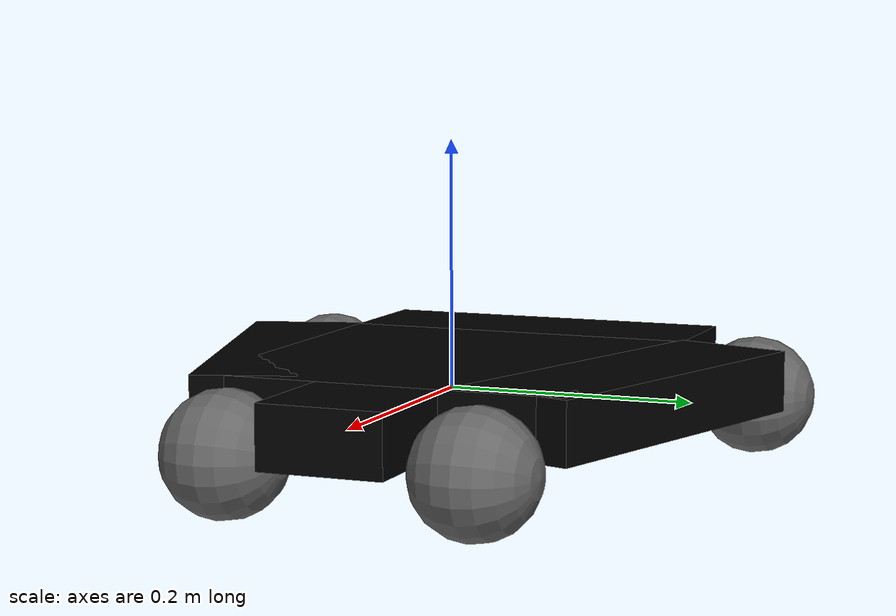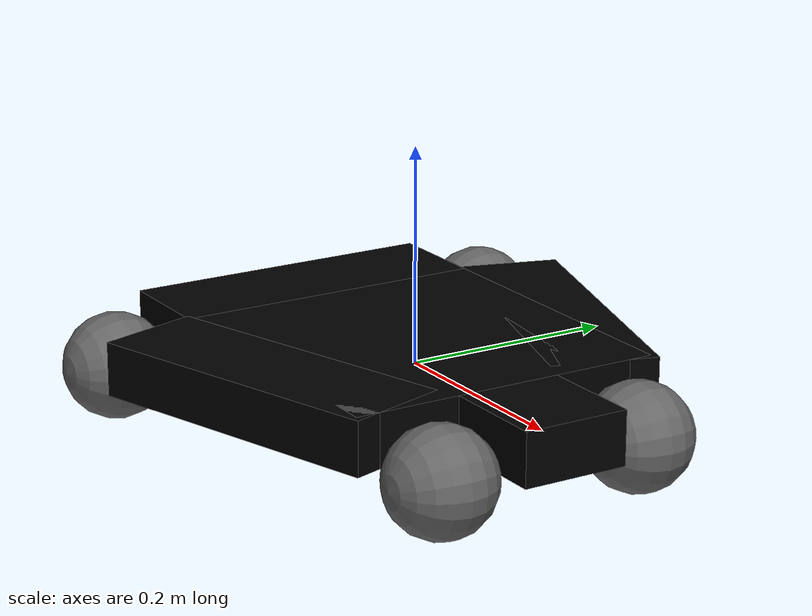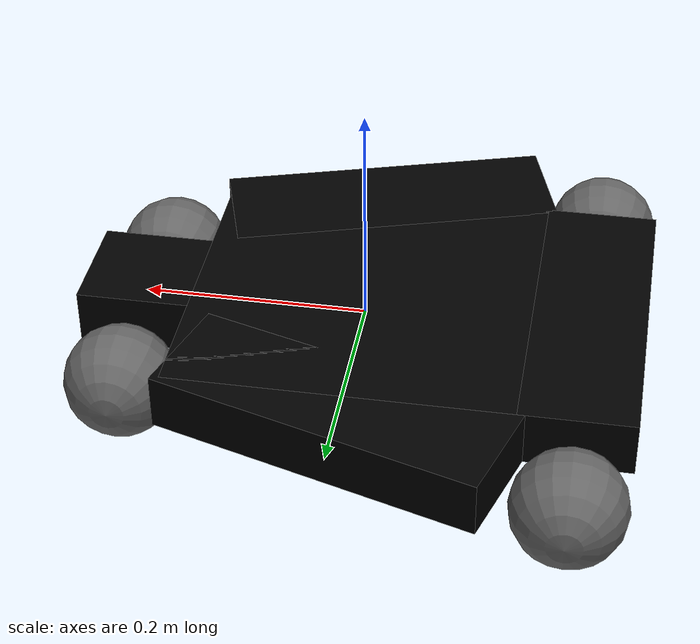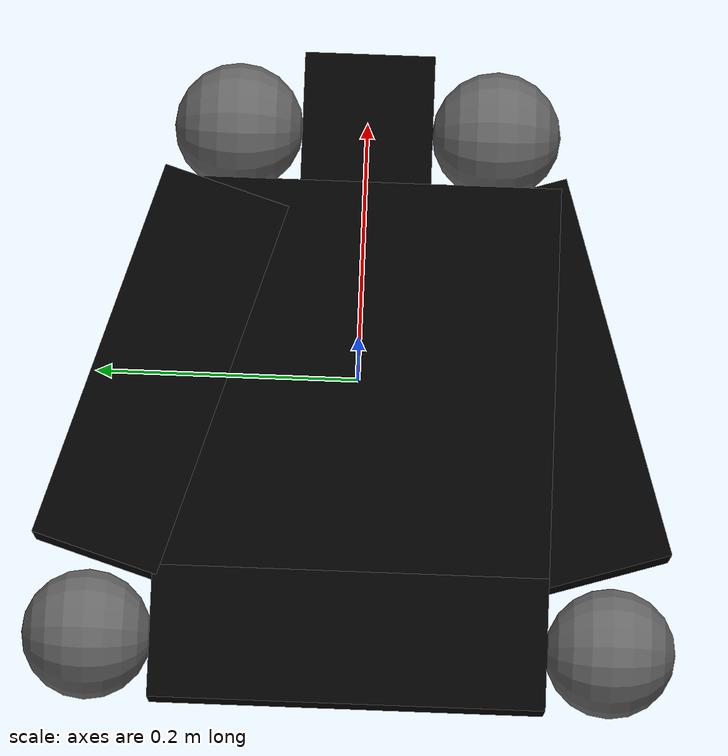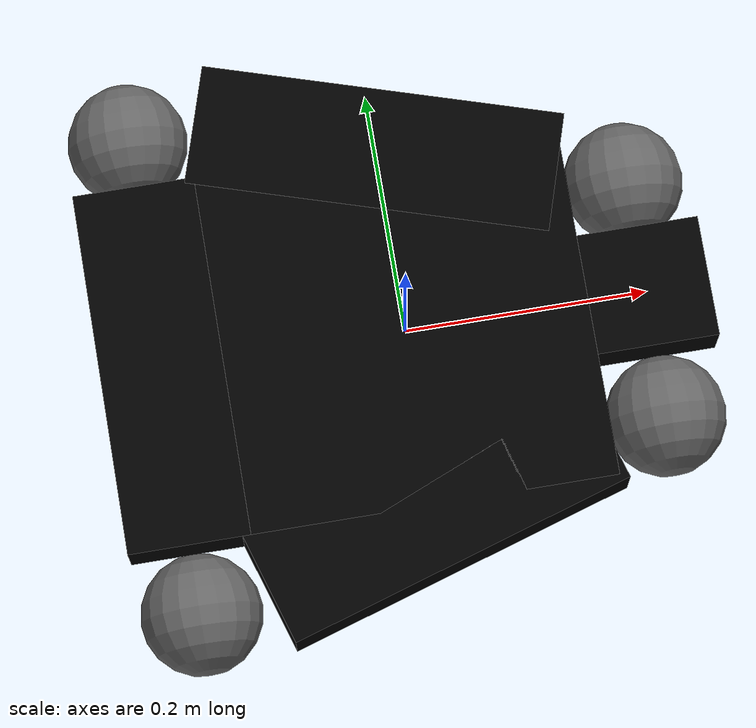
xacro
<?xml version="1.0"?>
<robot xmlns:xacro="http://www.ros.org/wiki/xacro" name="my_simple_mobile_base">

    <xacro:property name="base_mass" value="30.0" />
    <xacro:property name="wheel_mass" value="5.0" />
    <xacro:property name="wheel_radius" value="0.05" />

    <xacro:macro name="cuboid_inertia" params="mass length breadth height">
        <inertial>
            <mass value="${mass}" />
            <inertia ixx="${(mass/12)*(breadth*breadth + height*height)}"
                     iyy="${(mass/12)*(height*height + length*length)}"
                     iyz="0.0" ixy="0.0" ixz="0.0"
                     izz="${(mass/12)*(breadth*breadth + length*length)}" />
        </inertial>
    </xacro:macro>

    <xacro:macro name="sphere_inertia" params="mass radius">
        <inertial>
            <mass value="${mass}" />
            <inertia ixx="${(mass*0.4)*(radius*radius)}"
                     iyy="${(mass*0.4)*(radius*radius)}"
                     iyz="0.0" ixy="0.0" ixz="0.0"
                     izz="${(mass*0.4)*(radius*radius)}" />
        </inertial>
    </xacro:macro>

    <xacro:macro name="wheel" params="name parent *origin mass radius">
        <joint name="joint_${name}" type="fixed">
            <xacro:insert_block name="origin" />
            <parent link="${parent}"/>
            <child link="${name}_link"/>
        </joint>
        <link name="${name}_link">
            <visual>
                <geometry>
                    <sphere radius="${radius}"/>
                </geometry>
                <origin xyz='0.0 0.0 0.0' rpy='1.57 0.0 0.0' />
                <material name="light_grey"/>
            </visual>
            <collision>
                <geometry>
                    <sphere radius="${radius}"/>
                </geometry>
                <origin xyz='0.0 0.0 0.0' rpy='0.0 0.0 0.0' />
            </collision>
            <xacro:sphere_inertia mass="${mass}" radius="${radius}" />
        </link>
        <gazebo reference="${name}_link">
            <material>Gazebo/Grey</material>
        </gazebo>
    </xacro:macro>

    <material name="black">
        <color rgba="0.0 0.0 0.0 1.0"/>
    </material>
    <material name="light_grey">
        <color rgba="0.4 0.4 0.4 1.0"/>
    </material>

    <link name="base_link">
        <visual>
            <geometry>
                <box size='0.1 0.3 0.05'/>
            </geometry>
            <origin xyz='-0.2 0.0 0.0' rpy='0.0 0.0 0.0' />
            <material name="black"/>
        </visual>
        <visual>
            <geometry>
                <box size='0.3 0.3 0.05'/>
            </geometry>
            <origin xyz='0.0 0.0 0.0' rpy='0.0 0.0 0.0' />
            <material name="black"/>
        </visual>
        <visual>
            <geometry>
                <box size='0.1 0.1 0.05'/>
            </geometry>
            <origin xyz='0.2 0.0 0.0' rpy='0.0 0.0 0.0' />
            <material name="black"/>
        </visual>
        <visual>
            <geometry>
                <box size='0.3 0.1 0.05'/>
            </geometry>
            <origin xyz='0.0 0.15 0.0' rpy='0.0 0.0 -0.3' />
            <material name="black"/>
        </visual>
        <visual>
            <geometry>
                <box size='0.3 0.1 0.05'/>
            </geometry>
            <origin xyz='0.0 -0.15 0.0' rpy='0.0 0.0 0.3' />
            <material name="black"/>
        </visual>
        <collision>
            <geometry>
                <box size='0.5 0.3 0.05'/>
            </geometry>
            <origin xyz='0.0 0.0 0.0' rpy='0.0 0.0 0.0' />
        </collision>
        <xacro:cuboid_inertia mass="${base_mass}" length="0.5" breadth="0.3" height="0.05"/>
    </link>

    <gazebo reference="base_link">
        <material>Gazebo/Black</material>
    </gazebo>

    <!-- WHEELS -->
    <xacro:wheel name="rear_left_wheel" parent="base_link"
                        mass="${wheel_mass}" radius="${wheel_radius}" >
        <origin xyz="-0.2 0.2 -0.025" rpy="0 0 0.0" />
    </xacro:wheel>

    <xacro:wheel name="rear_right_wheel" parent="base_link"
                        mass="${wheel_mass}" radius="${wheel_radius}" >
        <origin xyz="-0.2 -0.2 -0.025" rpy="0 0 0.0" />
    </xacro:wheel>

    <xacro:wheel name="front_left_wheel" parent="base_link"
                        mass="${wheel_mass}" radius="${wheel_radius}" >
        <origin xyz="0.2 0.1 -0.025" rpy="0 0 0.0" />
    </xacro:wheel>

    <xacro:wheel name="front_right_wheel" parent="base_link"
                        mass="${wheel_mass}" radius="${wheel_radius}" >
        <origin xyz="0.2 -0.1 -0.025" rpy="0 0 0.0" />
    </xacro:wheel>

    <gazebo>
        <plugin name="object_controller" filename="libgazebo_ros_planar_move.so">
            <commandTopic>cmd_vel</commandTopic>
            <odometryTopic>odom</odometryTopic>
            <odometryFrame>odom</odometryFrame>
            <odometryRate>20.0</odometryRate>
            <robotBaseFrame>base_link</robotBaseFrame>
        </plugin>
    </gazebo>

    <gazebo>
        <plugin name="gazebo_ros_control" filename="libgazebo_ros_control.so">
            <robotNamespace>/</robotNamespace>
            <robotSimType>gazebo_ros_control/DefaultRobotHWSim</robotSimType>
            <legacyModeNS>true</legacyModeNS>
        </plugin>
    </gazebo>
</robot>
